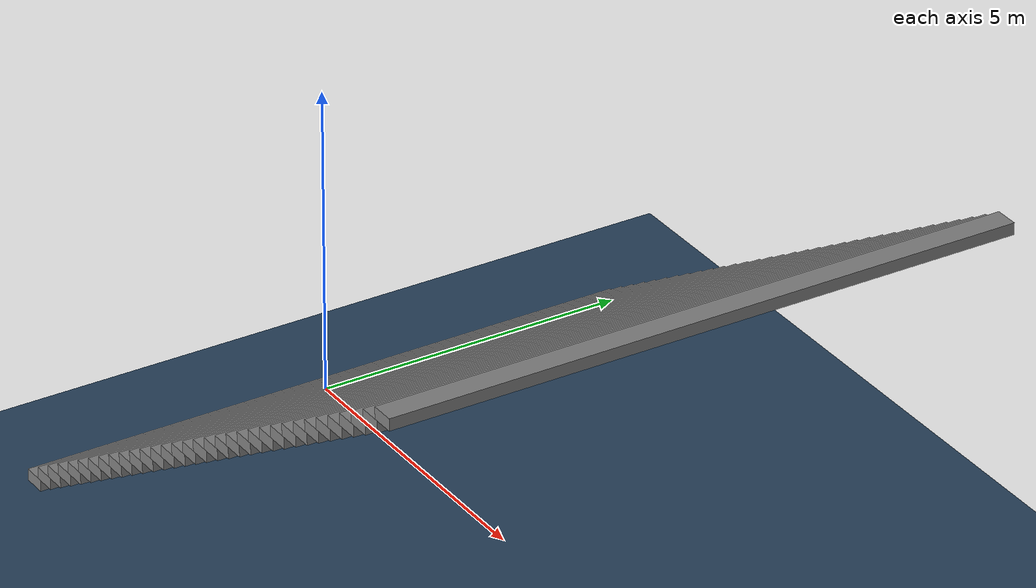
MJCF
<mujoco model="stairs_up_6">
  <!-- Terrain Type: stairs_up, Level: 6, Stairs step height: 0.1900 -->
  <statistic center="0 0 0.1" extent="0.8" />
  <visual>
    <headlight diffuse="0.6 0.6 0.6" ambient="0.3 0.3 0.3" specular="0 0 0" />
    <rgba haze="0.15 0.25 0.35 1" />
    <global azimuth="-130" elevation="-20" />
  </visual>
  <asset>
    <texture type="skybox" builtin="gradient" rgb1="0.3 0.5 0.7" rgb2="0 0 0" width="512" height="3072" />
    <texture type="2d" name="groundplane" builtin="checker" mark="edge" rgb1="0.2 0.3 0.4" rgb2="0.1 0.2 0.3" markrgb="0.8 0.8 0.8" width="300" height="300" />
    <material name="groundplane" texture="groundplane" texuniform="true" texrepeat="5 5" reflectance="0.0" />
  </asset>
  <worldbody>
    <light pos="0 0 1.5" dir="0 0 -1" directional="true" />
    <geom name="floor" size="0 0 0.05" type="plane" material="groundplane" />
    <geom pos="0.155 0.0 0.095" type="box" size="0.186 5.0 0.095" quat="1.0 0.0 0.0 0.0" />
    <geom pos="0.46499999999999997 0.0 0.28500000000000003" type="box" size="0.186 5.0 0.095" quat="1.0 0.0 0.0 0.0" />
    <geom pos="0.7749999999999999 0.0 0.47500000000000003" type="box" size="0.186 5.0 0.095" quat="1.0 0.0 0.0 0.0" />
    <geom pos="1.085 0.0 0.665" type="box" size="0.186 5.0 0.095" quat="1.0 0.0 0.0 0.0" />
    <geom pos="1.395 0.0 0.855" type="box" size="0.186 5.0 0.095" quat="1.0 0.0 0.0 0.0" />
    <geom pos="1.705 0.0 1.045" type="box" size="0.186 5.0 0.095" quat="1.0 0.0 0.0 0.0" />
    <geom pos="2.015 0.0 1.2349999999999999" type="box" size="0.186 5.0 0.095" quat="1.0 0.0 0.0 0.0" />
    <geom pos="2.325 0.0 1.4249999999999998" type="box" size="0.186 5.0 0.095" quat="1.0 0.0 0.0 0.0" />
    <geom pos="2.6350000000000002 0.0 1.6149999999999998" type="box" size="0.186 5.0 0.095" quat="1.0 0.0 0.0 0.0" />
    <geom pos="2.9450000000000003 0.0 1.8049999999999997" type="box" size="0.186 5.0 0.095" quat="1.0 0.0 0.0 0.0" />
    <geom pos="3.2550000000000003 0.0 1.9949999999999997" type="box" size="0.186 5.0 0.095" quat="1.0 0.0 0.0 0.0" />
    <geom pos="3.5650000000000004 0.0 2.1849999999999996" type="box" size="0.186 5.0 0.095" quat="1.0 0.0 0.0 0.0" />
    <geom pos="3.8750000000000004 0.0 2.3749999999999996" type="box" size="0.186 5.0 0.095" quat="1.0 0.0 0.0 0.0" />
    <geom pos="4.1850000000000005 0.0 2.5649999999999995" type="box" size="0.186 5.0 0.095" quat="1.0 0.0 0.0 0.0" />
    <geom pos="4.495 0.0 2.7549999999999994" type="box" size="0.186 5.0 0.095" quat="1.0 0.0 0.0 0.0" />
    <geom pos="4.805 0.0 2.9449999999999994" type="box" size="0.186 5.0 0.095" quat="1.0 0.0 0.0 0.0" />
    <geom pos="5.114999999999999 0.0 3.1349999999999993" type="box" size="0.186 5.0 0.095" quat="1.0 0.0 0.0 0.0" />
    <geom pos="5.424999999999999 0.0 3.3249999999999993" type="box" size="0.186 5.0 0.095" quat="1.0 0.0 0.0 0.0" />
    <geom pos="5.7349999999999985 0.0 3.5149999999999992" type="box" size="0.186 5.0 0.095" quat="1.0 0.0 0.0 0.0" />
    <geom pos="6.044999999999998 0.0 3.704999999999999" type="box" size="0.186 5.0 0.095" quat="1.0 0.0 0.0 0.0" />
    <geom pos="6.354999999999998 0.0 3.894999999999999" type="box" size="0.186 5.0 0.095" quat="1.0 0.0 0.0 0.0" />
    <geom pos="6.664999999999997 0.0 4.084999999999999" type="box" size="0.186 5.0 0.095" quat="1.0 0.0 0.0 0.0" />
    <geom pos="6.974999999999997 0.0 4.2749999999999995" type="box" size="0.186 5.0 0.095" quat="1.0 0.0 0.0 0.0" />
    <geom pos="7.284999999999997 0.0 4.465" type="box" size="0.186 5.0 0.095" quat="1.0 0.0 0.0 0.0" />
    <geom pos="7.594999999999996 0.0 4.655" type="box" size="0.186 5.0 0.095" quat="1.0 0.0 0.0 0.0" />
    <geom pos="7.904999999999996 0.0 4.845000000000001" type="box" size="0.186 5.0 0.095" quat="1.0 0.0 0.0 0.0" />
    <geom pos="8.214999999999996 0.0 5.035000000000001" type="box" size="0.186 5.0 0.095" quat="1.0 0.0 0.0 0.0" />
    <geom pos="8.524999999999997 0.0 5.225000000000001" type="box" size="0.186 5.0 0.095" quat="1.0 0.0 0.0 0.0" />
    <geom pos="8.834999999999997 0.0 5.415000000000002" type="box" size="0.186 5.0 0.095" quat="1.0 0.0 0.0 0.0" />
    <geom pos="9.144999999999998 0.0 5.605000000000002" type="box" size="0.186 5.0 0.095" quat="1.0 0.0 0.0 0.0" />
    <geom pos="9.454999999999998 0.0 5.795000000000003" type="box" size="0.186 5.0 0.095" quat="1.0 0.0 0.0 0.0" />
    <geom pos="9.764999999999999 0.0 5.985000000000003" type="box" size="0.186 5.0 0.095" quat="1.0 0.0 0.0 0.0" />
    <geom pos="10.075 0.0 6.175000000000003" type="box" size="0.186 5.0 0.095" quat="1.0 0.0 0.0 0.0" />
  </worldbody>
</mujoco>
